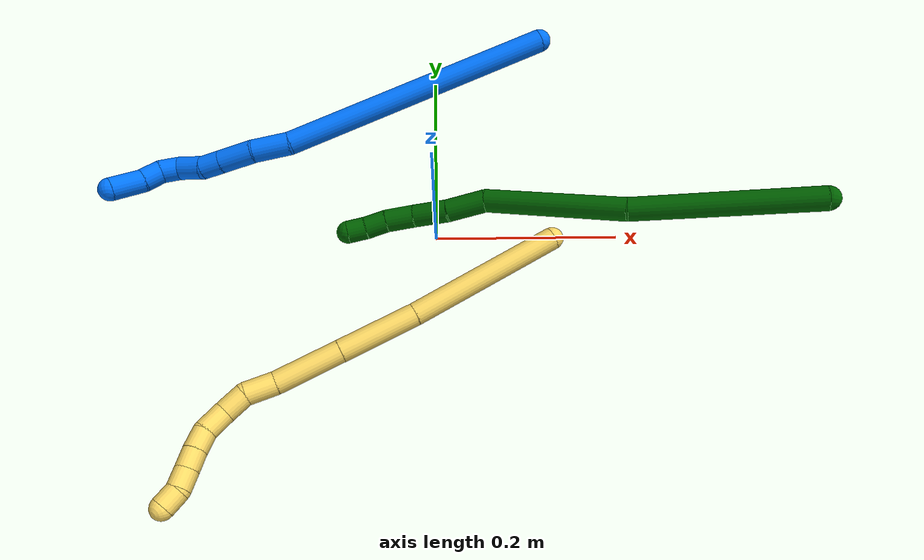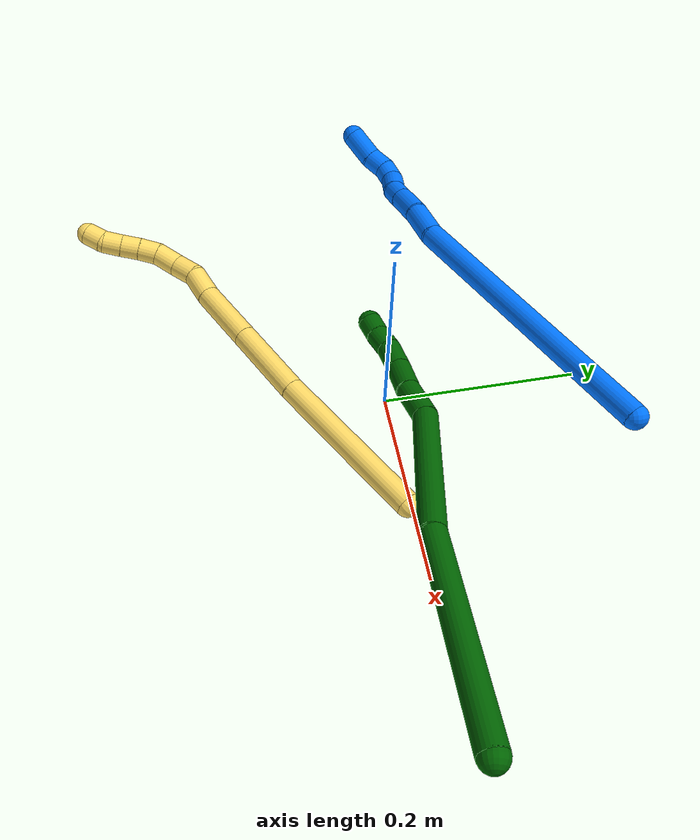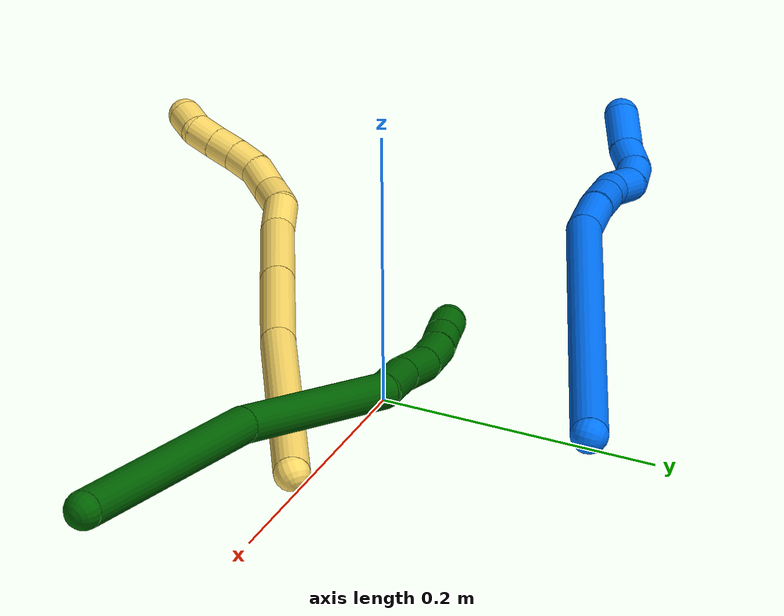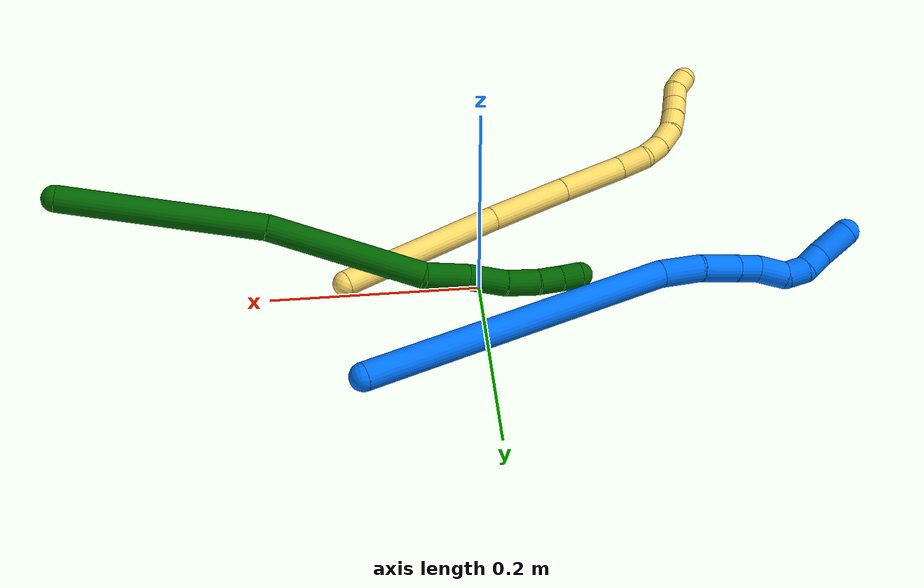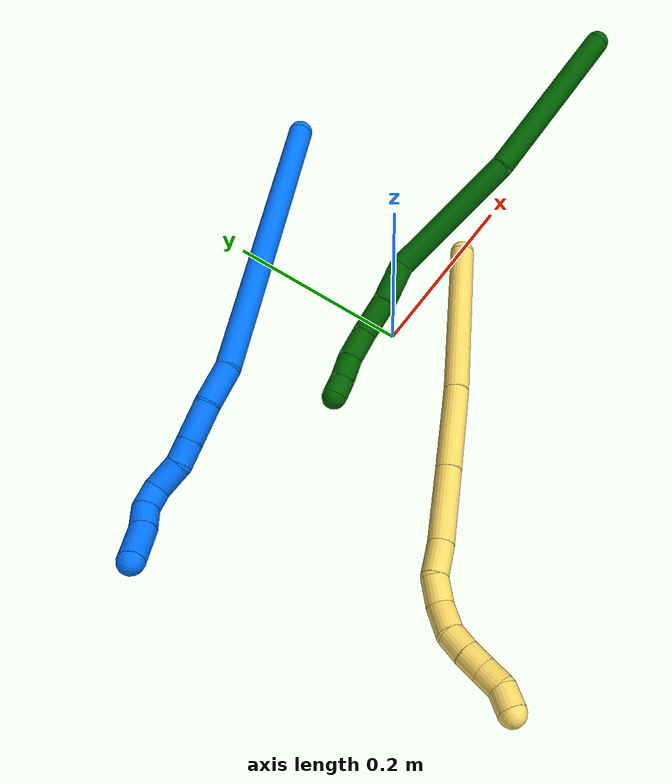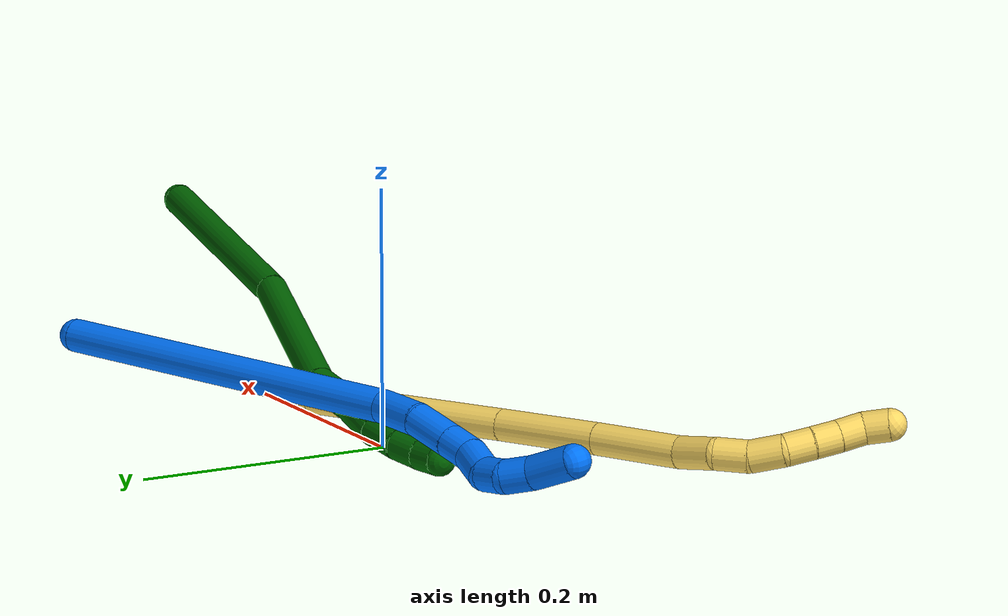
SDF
<sdf version="1.7">
 <world name="default">
  <model name="5">
   <static>0</static>
   <link name="5">
    <collision name="collision-cylinder-e_1_1_4">
     <pose>-0.052733 -0.023867 0.064256 0.355647 -0.655752 -0.122114</pose>
     <geometry><cylinder><radius>0.0125</radius><length>0.172966</length></cylinder></geometry>
     <surface>
      <friction><ode><mu>1.16</mu><mu2>1.16</mu2><slip1>0</slip1><slip2>0</slip2></ode></friction>
      <contact><ode><kp>1e+06</kp><kd>1</kd><max_vel>0</max_vel><min_depth>0.001</min_depth></ode></contact>
     </surface>
    </collision>
    <visual name="visual-cylinder-e_1_1_4">
     <pose>-0.052733 -0.023867 0.064256 0.355647 -0.655752 -0.122114</pose>
     <geometry><cylinder><radius>0.0125</radius><length>0.172966</length></cylinder></geometry>
     <material><ambient>1 0.858824 0.4 1</ambient></material>
    </visual>
    <collision name="collision-cylinder-e_2_4_5">
     <pose>-0.133072 -0.057986 0.160319 0.311777 -0.690431 -0.112917</pose>
     <geometry><cylinder><radius>0.0125</radius><length>0.08669</length></cylinder></geometry>
     <surface>
      <friction><ode><mu>1.16</mu><mu2>1.16</mu2><slip1>0</slip1><slip2>0</slip2></ode></friction>
      <contact><ode><kp>1e+06</kp><kd>1</kd><max_vel>0</max_vel><min_depth>0.001</min_depth></ode></contact>
     </surface>
    </collision>
    <visual name="visual-cylinder-e_2_4_5">
     <pose>-0.133072 -0.057986 0.160319 0.311777 -0.690431 -0.112917</pose>
     <geometry><cylinder><radius>0.0125</radius><length>0.08669</length></cylinder></geometry>
     <material><ambient>1 0.858824 0.4 1</ambient></material>
    </visual>
    <collision name="collision-cylinder-e_3_5_6">
     <pose>-0.184257 -0.077068 0.218635 0.32157 -0.700935 -0.118438</pose>
     <geometry><cylinder><radius>0.0125</radius><length>0.073122</length></cylinder></geometry>
     <surface>
      <friction><ode><mu>1.16</mu><mu2>1.16</mu2><slip1>0</slip1><slip2>0</slip2></ode></friction>
      <contact><ode><kp>1e+06</kp><kd>1</kd><max_vel>0</max_vel><min_depth>0.001</min_depth></ode></contact>
     </surface>
    </collision>
    <visual name="visual-cylinder-e_3_5_6">
     <pose>-0.184257 -0.077068 0.218635 0.32157 -0.700935 -0.118438</pose>
     <geometry><cylinder><radius>0.0125</radius><length>0.073122</length></cylinder></geometry>
     <material><ambient>1 0.858824 0.4 1</ambient></material>
    </visual>
    <collision name="collision-cylinder-e_4_6_7">
     <pose>-0.218159 -0.087449 0.257556 0.124303 -0.689986 -0.04472</pose>
     <geometry><cylinder><radius>0.0125</radius><length>0.032437</length></cylinder></geometry>
     <surface>
      <friction><ode><mu>1.16</mu><mu2>1.16</mu2><slip1>0</slip1><slip2>0</slip2></ode></friction>
      <contact><ode><kp>1e+06</kp><kd>1</kd><max_vel>0</max_vel><min_depth>0.001</min_depth></ode></contact>
     </surface>
    </collision>
    <visual name="visual-cylinder-e_4_6_7">
     <pose>-0.218159 -0.087449 0.257556 0.124303 -0.689986 -0.04472</pose>
     <geometry><cylinder><radius>0.0125</radius><length>0.032437</length></cylinder></geometry>
     <material><ambient>1 0.858824 0.4 1</ambient></material>
    </visual>
    <collision name="collision-cylinder-e_5_7_8">
     <pose>-0.234186 -0.094743 0.280194 0.511659 -0.452576 -0.120294</pose>
     <geometry><cylinder><radius>0.0125</radius><length>0.026082</length></cylinder></geometry>
     <surface>
      <friction><ode><mu>1.16</mu><mu2>1.16</mu2><slip1>0</slip1><slip2>0</slip2></ode></friction>
      <contact><ode><kp>1e+06</kp><kd>1</kd><max_vel>0</max_vel><min_depth>0.001</min_depth></ode></contact>
     </surface>
    </collision>
    <visual name="visual-cylinder-e_5_7_8">
     <pose>-0.234186 -0.094743 0.280194 0.511659 -0.452576 -0.120294</pose>
     <geometry><cylinder><radius>0.0125</radius><length>0.026082</length></cylinder></geometry>
     <material><ambient>1 0.858824 0.4 1</ambient></material>
    </visual>
    <collision name="collision-cylinder-e_6_8_9">
     <pose>-0.24288 -0.104918 0.302603 0.348937 -0.226815 -0.040145</pose>
     <geometry><cylinder><radius>0.0125</radius><length>0.02661</length></cylinder></geometry>
     <surface>
      <friction><ode><mu>1.16</mu><mu2>1.16</mu2><slip1>0</slip1><slip2>0</slip2></ode></friction>
      <contact><ode><kp>1e+06</kp><kd>1</kd><max_vel>0</max_vel><min_depth>0.001</min_depth></ode></contact>
     </surface>
    </collision>
    <visual name="visual-cylinder-e_6_8_9">
     <pose>-0.24288 -0.104918 0.302603 0.348937 -0.226815 -0.040145</pose>
     <geometry><cylinder><radius>0.0125</radius><length>0.02661</length></cylinder></geometry>
     <material><ambient>1 0.858824 0.4 1</ambient></material>
    </visual>
    <collision name="collision-cylinder-e_7_9_10">
     <pose>-0.245087 -0.11466 0.323946 0.525345 0.074002 0.019906</pose>
     <geometry><cylinder><radius>0.0125</radius><length>0.021235</length></cylinder></geometry>
     <surface>
      <friction><ode><mu>1.16</mu><mu2>1.16</mu2><slip1>0</slip1><slip2>0</slip2></ode></friction>
      <contact><ode><kp>1e+06</kp><kd>1</kd><max_vel>0</max_vel><min_depth>0.001</min_depth></ode></contact>
     </surface>
    </collision>
    <visual name="visual-cylinder-e_7_9_10">
     <pose>-0.245087 -0.11466 0.323946 0.525345 0.074002 0.019906</pose>
     <geometry><cylinder><radius>0.0125</radius><length>0.021235</length></cylinder></geometry>
     <material><ambient>1 0.858824 0.4 1</ambient></material>
    </visual>
    <collision name="collision-cylinder-e_8_10_11">
     <pose>-0.242871 -0.12543 0.341581 0.572327 0.141062 0.041569</pose>
     <geometry><cylinder><radius>0.0125</radius><length>0.020362</length></cylinder></geometry>
     <surface>
      <friction><ode><mu>1.16</mu><mu2>1.16</mu2><slip1>0</slip1><slip2>0</slip2></ode></friction>
      <contact><ode><kp>1e+06</kp><kd>1</kd><max_vel>0</max_vel><min_depth>0.001</min_depth></ode></contact>
     </surface>
    </collision>
    <visual name="visual-cylinder-e_8_10_11">
     <pose>-0.242871 -0.12543 0.341581 0.572327 0.141062 0.041569</pose>
     <geometry><cylinder><radius>0.0125</radius><length>0.020362</length></cylinder></geometry>
     <material><ambient>1 0.858824 0.4 1</ambient></material>
    </visual>
    <collision name="collision-cylinder-e_9_11_12">
     <pose>-0.239789 -0.13599 0.358726 0.531764 0.162571 0.044363</pose>
     <geometry><cylinder><radius>0.0125</radius><length>0.020391</length></cylinder></geometry>
     <surface>
      <friction><ode><mu>1.16</mu><mu2>1.16</mu2><slip1>0</slip1><slip2>0</slip2></ode></friction>
      <contact><ode><kp>1e+06</kp><kd>1</kd><max_vel>0</max_vel><min_depth>0.001</min_depth></ode></contact>
     </surface>
    </collision>
    <visual name="visual-cylinder-e_9_11_12">
     <pose>-0.239789 -0.13599 0.358726 0.531764 0.162571 0.044363</pose>
     <geometry><cylinder><radius>0.0125</radius><length>0.020391</length></cylinder></geometry>
     <material><ambient>1 0.858824 0.4 1</ambient></material>
    </visual>
    <collision name="collision-cylinder-e_10_12_2">
     <pose>-0.240396 -0.14514 0.376318 0.426078 -0.22644 -0.049184</pose>
     <geometry><cylinder><radius>0.0125</radius><length>0.020105</length></cylinder></geometry>
     <surface>
      <friction><ode><mu>1.16</mu><mu2>1.16</mu2><slip1>0</slip1><slip2>0</slip2></ode></friction>
      <contact><ode><kp>1e+06</kp><kd>1</kd><max_vel>0</max_vel><min_depth>0.001</min_depth></ode></contact>
     </surface>
    </collision>
    <visual name="visual-cylinder-e_10_12_2">
     <pose>-0.240396 -0.14514 0.376318 0.426078 -0.22644 -0.049184</pose>
     <geometry><cylinder><radius>0.0125</radius><length>0.020105</length></cylinder></geometry>
     <material><ambient>1 0.858824 0.4 1</ambient></material>
    </visual>
    <collision name="collision-sphere-2">
     <pose>-0.242653 -0.149189 0.385238 0 -0 0</pose>
     <geometry><sphere><radius>0.0125</radius></sphere></geometry>
     <surface>
      <friction><ode><mu>1.16</mu><mu2>1.16</mu2><slip1>0</slip1><slip2>0</slip2></ode></friction>
      <contact><ode><kp>1e+06</kp><kd>1</kd><max_vel>0</max_vel><min_depth>0.001</min_depth></ode></contact>
     </surface>
    </collision>
    <visual name="visual-sphere-2">
     <pose>-0.242653 -0.149189 0.385238 0 -0 0</pose>
     <geometry><sphere><radius>0.0125</radius></sphere></geometry>
     <material><ambient>1 0.858824 0.4 1</ambient></material>
    </visual>
    <collision name="collision-sphere-12">
     <pose>-0.238139 -0.141092 0.367397 0 -0 0</pose>
     <geometry><sphere><radius>0.0125</radius></sphere></geometry>
     <surface>
      <friction><ode><mu>1.16</mu><mu2>1.16</mu2><slip1>0</slip1><slip2>0</slip2></ode></friction>
      <contact><ode><kp>1e+06</kp><kd>1</kd><max_vel>0</max_vel><min_depth>0.001</min_depth></ode></contact>
     </surface>
    </collision>
    <visual name="visual-sphere-12">
     <pose>-0.238139 -0.141092 0.367397 0 -0 0</pose>
     <geometry><sphere><radius>0.0125</radius></sphere></geometry>
     <material><ambient>1 0.858824 0.4 1</ambient></material>
    </visual>
    <collision name="collision-sphere-11">
     <pose>-0.241439 -0.130889 0.350054 0 -0 0</pose>
     <geometry><sphere><radius>0.0125</radius></sphere></geometry>
     <surface>
      <friction><ode><mu>1.16</mu><mu2>1.16</mu2><slip1>0</slip1><slip2>0</slip2></ode></friction>
      <contact><ode><kp>1e+06</kp><kd>1</kd><max_vel>0</max_vel><min_depth>0.001</min_depth></ode></contact>
     </surface>
    </collision>
    <visual name="visual-sphere-11">
     <pose>-0.241439 -0.130889 0.350054 0 -0 0</pose>
     <geometry><sphere><radius>0.0125</radius></sphere></geometry>
     <material><ambient>1 0.858824 0.4 1</ambient></material>
    </visual>
    <collision name="collision-sphere-10">
     <pose>-0.244302 -0.119971 0.333107 0 -0 0</pose>
     <geometry><sphere><radius>0.0125</radius></sphere></geometry>
     <surface>
      <friction><ode><mu>1.16</mu><mu2>1.16</mu2><slip1>0</slip1><slip2>0</slip2></ode></friction>
      <contact><ode><kp>1e+06</kp><kd>1</kd><max_vel>0</max_vel><min_depth>0.001</min_depth></ode></contact>
     </surface>
    </collision>
    <visual name="visual-sphere-10">
     <pose>-0.244302 -0.119971 0.333107 0 -0 0</pose>
     <geometry><sphere><radius>0.0125</radius></sphere></geometry>
     <material><ambient>1 0.858824 0.4 1</ambient></material>
    </visual>
    <collision name="collision-sphere-9">
     <pose>-0.245872 -0.10935 0.314786 0 -0 0</pose>
     <geometry><sphere><radius>0.0125</radius></sphere></geometry>
     <surface>
      <friction><ode><mu>1.16</mu><mu2>1.16</mu2><slip1>0</slip1><slip2>0</slip2></ode></friction>
      <contact><ode><kp>1e+06</kp><kd>1</kd><max_vel>0</max_vel><min_depth>0.001</min_depth></ode></contact>
     </surface>
    </collision>
    <visual name="visual-sphere-9">
     <pose>-0.245872 -0.10935 0.314786 0 -0 0</pose>
     <geometry><sphere><radius>0.0125</radius></sphere></geometry>
     <material><ambient>1 0.858824 0.4 1</ambient></material>
    </visual>
    <collision name="collision-sphere-4">
     <pose>-0.105467 -0.047735 0.128512 0 -0 0</pose>
     <geometry><sphere><radius>0.0125</radius></sphere></geometry>
     <surface>
      <friction><ode><mu>1.16</mu><mu2>1.16</mu2><slip1>0</slip1><slip2>0</slip2></ode></friction>
      <contact><ode><kp>1e+06</kp><kd>1</kd><max_vel>0</max_vel><min_depth>0.001</min_depth></ode></contact>
     </surface>
    </collision>
    <visual name="visual-sphere-4">
     <pose>-0.105467 -0.047735 0.128512 0 -0 0</pose>
     <geometry><sphere><radius>0.0125</radius></sphere></geometry>
     <material><ambient>1 0.858824 0.4 1</ambient></material>
    </visual>
    <collision name="collision-sphere-1">
     <geometry><sphere><radius>0.0125</radius></sphere></geometry>
     <surface>
      <friction><ode><mu>1.16</mu><mu2>1.16</mu2><slip1>0</slip1><slip2>0</slip2></ode></friction>
      <contact><ode><kp>1e+06</kp><kd>1</kd><max_vel>0</max_vel><min_depth>0.001</min_depth></ode></contact>
     </surface>
    </collision>
    <visual name="visual-sphere-1">
     <geometry><sphere><radius>0.0125</radius></sphere></geometry>
     <material><ambient>1 0.858824 0.4 1</ambient></material>
    </visual>
    <collision name="collision-sphere-8">
     <pose>-0.239888 -0.100485 0.29042 0 -0 0</pose>
     <geometry><sphere><radius>0.0125</radius></sphere></geometry>
     <surface>
      <friction><ode><mu>1.16</mu><mu2>1.16</mu2><slip1>0</slip1><slip2>0</slip2></ode></friction>
      <contact><ode><kp>1e+06</kp><kd>1</kd><max_vel>0</max_vel><min_depth>0.001</min_depth></ode></contact>
     </surface>
    </collision>
    <visual name="visual-sphere-8">
     <pose>-0.239888 -0.100485 0.29042 0 -0 0</pose>
     <geometry><sphere><radius>0.0125</radius></sphere></geometry>
     <material><ambient>1 0.858824 0.4 1</ambient></material>
    </visual>
    <collision name="collision-sphere-5">
     <pose>-0.160677 -0.068236 0.192126 0 -0 0</pose>
     <geometry><sphere><radius>0.0125</radius></sphere></geometry>
     <surface>
      <friction><ode><mu>1.16</mu><mu2>1.16</mu2><slip1>0</slip1><slip2>0</slip2></ode></friction>
      <contact><ode><kp>1e+06</kp><kd>1</kd><max_vel>0</max_vel><min_depth>0.001</min_depth></ode></contact>
     </surface>
    </collision>
    <visual name="visual-sphere-5">
     <pose>-0.160677 -0.068236 0.192126 0 -0 0</pose>
     <geometry><sphere><radius>0.0125</radius></sphere></geometry>
     <material><ambient>1 0.858824 0.4 1</ambient></material>
    </visual>
    <collision name="collision-sphere-6">
     <pose>-0.207836 -0.085899 0.245144 0 -0 0</pose>
     <geometry><sphere><radius>0.0125</radius></sphere></geometry>
     <surface>
      <friction><ode><mu>1.16</mu><mu2>1.16</mu2><slip1>0</slip1><slip2>0</slip2></ode></friction>
      <contact><ode><kp>1e+06</kp><kd>1</kd><max_vel>0</max_vel><min_depth>0.001</min_depth></ode></contact>
     </surface>
    </collision>
    <visual name="visual-sphere-6">
     <pose>-0.207836 -0.085899 0.245144 0 -0 0</pose>
     <geometry><sphere><radius>0.0125</radius></sphere></geometry>
     <material><ambient>1 0.858824 0.4 1</ambient></material>
    </visual>
    <collision name="collision-sphere-7">
     <pose>-0.228483 -0.089 0.269968 0 -0 0</pose>
     <geometry><sphere><radius>0.0125</radius></sphere></geometry>
     <surface>
      <friction><ode><mu>1.16</mu><mu2>1.16</mu2><slip1>0</slip1><slip2>0</slip2></ode></friction>
      <contact><ode><kp>1e+06</kp><kd>1</kd><max_vel>0</max_vel><min_depth>0.001</min_depth></ode></contact>
     </surface>
    </collision>
    <visual name="visual-sphere-7">
     <pose>-0.228483 -0.089 0.269968 0 -0 0</pose>
     <geometry><sphere><radius>0.0125</radius></sphere></geometry>
     <material><ambient>1 0.858824 0.4 1</ambient></material>
    </visual>
    <inertial>
     <pose>-0.147301 -0.067139 0.186857 0 -0 0</pose>
     <mass>0.5</mass>
     <inertia><ixx>0.00036</ixx><ixy>0</ixy><ixz>0</ixz><iyy>0.00046</iyy><iyz>0</iyz><izz>0.000509</izz></inertia>
    </inertial>
   </link>
   <pose>0.127503 -0.005555 0.011498 0.848109 -0.43514 -0.312138</pose>
  </model>
  <model name="6">
   <static>0</static>
   <link name="6">
    <collision name="collision-cylinder-e_1_1_4">
     <pose>-0.026191 0.001589 -0.091833 -3.12429 -0.277787 3.01798</pose>
     <geometry><cylinder><radius>0.0125</radius><length>0.191017</length></cylinder></geometry>
     <surface>
      <friction><ode><mu>1.16</mu><mu2>1.16</mu2><slip1>0</slip1><slip2>0</slip2></ode></friction>
      <contact><ode><kp>1e+06</kp><kd>1</kd><max_vel>0</max_vel><min_depth>0.001</min_depth></ode></contact>
     </surface>
    </collision>
    <visual name="visual-cylinder-e_1_1_4">
     <pose>-0.026191 0.001589 -0.091833 -3.12429 -0.277787 3.01798</pose>
     <geometry><cylinder><radius>0.0125</radius><length>0.191017</length></cylinder></geometry>
     <material><ambient>0 0.392157 0.003922 1</ambient></material>
    </visual>
    <collision name="collision-cylinder-e_2_4_5">
     <pose>-0.072129 -0.009249 -0.255875 2.97117 -0.263252 -1.99559</pose>
     <geometry><cylinder><radius>0.0125</radius><length>0.151769</length></cylinder></geometry>
     <surface>
      <friction><ode><mu>1.16</mu><mu2>1.16</mu2><slip1>0</slip1><slip2>0</slip2></ode></friction>
      <contact><ode><kp>1e+06</kp><kd>1</kd><max_vel>0</max_vel><min_depth>0.001</min_depth></ode></contact>
     </surface>
    </collision>
    <visual name="visual-cylinder-e_2_4_5">
     <pose>-0.072129 -0.009249 -0.255875 2.97117 -0.263252 -1.99559</pose>
     <geometry><cylinder><radius>0.0125</radius><length>0.151769</length></cylinder></geometry>
     <material><ambient>0 0.392157 0.003922 1</ambient></material>
    </visual>
    <collision name="collision-cylinder-e_3_5_6">
     <pose>-0.100396 -0.018111 -0.347402 -2.95912 -0.409233 2.31114</pose>
     <geometry><cylinder><radius>0.0125</radius><length>0.042824</length></cylinder></geometry>
     <surface>
      <friction><ode><mu>1.16</mu><mu2>1.16</mu2><slip1>0</slip1><slip2>0</slip2></ode></friction>
      <contact><ode><kp>1e+06</kp><kd>1</kd><max_vel>0</max_vel><min_depth>0.001</min_depth></ode></contact>
     </surface>
    </collision>
    <visual name="visual-cylinder-e_3_5_6">
     <pose>-0.100396 -0.018111 -0.347402 -2.95912 -0.409233 2.31114</pose>
     <geometry><cylinder><radius>0.0125</radius><length>0.042824</length></cylinder></geometry>
     <material><ambient>0 0.392157 0.003922 1</ambient></material>
    </visual>
    <collision name="collision-cylinder-e_4_6_7">
     <pose>-0.116066 -0.013876 -0.38457 -3.10403 -0.38074 2.94727</pose>
     <geometry><cylinder><radius>0.0125</radius><length>0.038482</length></cylinder></geometry>
     <surface>
      <friction><ode><mu>1.16</mu><mu2>1.16</mu2><slip1>0</slip1><slip2>0</slip2></ode></friction>
      <contact><ode><kp>1e+06</kp><kd>1</kd><max_vel>0</max_vel><min_depth>0.001</min_depth></ode></contact>
     </surface>
    </collision>
    <visual name="visual-cylinder-e_4_6_7">
     <pose>-0.116066 -0.013876 -0.38457 -3.10403 -0.38074 2.94727</pose>
     <geometry><cylinder><radius>0.0125</radius><length>0.038482</length></cylinder></geometry>
     <material><ambient>0 0.392157 0.003922 1</ambient></material>
    </visual>
    <collision name="collision-cylinder-e_5_7_8">
     <pose>-0.127684 -0.010178 -0.417155 -2.93896 -0.288735 1.92106</pose>
     <geometry><cylinder><radius>0.0125</radius><length>0.031383</length></cylinder></geometry>
     <surface>
      <friction><ode><mu>1.16</mu><mu2>1.16</mu2><slip1>0</slip1><slip2>0</slip2></ode></friction>
      <contact><ode><kp>1e+06</kp><kd>1</kd><max_vel>0</max_vel><min_depth>0.001</min_depth></ode></contact>
     </surface>
    </collision>
    <visual name="visual-cylinder-e_5_7_8">
     <pose>-0.127684 -0.010178 -0.417155 -2.93896 -0.288735 1.92106</pose>
     <geometry><cylinder><radius>0.0125</radius><length>0.031383</length></cylinder></geometry>
     <material><ambient>0 0.392157 0.003922 1</ambient></material>
    </visual>
    <collision name="collision-cylinder-e_6_8_9">
     <pose>-0.136383 -0.003149 -0.442412 -2.7782 -0.359459 1.55968</pose>
     <geometry><cylinder><radius>0.0125</radius><length>0.024052</length></cylinder></geometry>
     <surface>
      <friction><ode><mu>1.16</mu><mu2>1.16</mu2><slip1>0</slip1><slip2>0</slip2></ode></friction>
      <contact><ode><kp>1e+06</kp><kd>1</kd><max_vel>0</max_vel><min_depth>0.001</min_depth></ode></contact>
     </surface>
    </collision>
    <visual name="visual-cylinder-e_6_8_9">
     <pose>-0.136383 -0.003149 -0.442412 -2.7782 -0.359459 1.55968</pose>
     <geometry><cylinder><radius>0.0125</radius><length>0.024052</length></cylinder></geometry>
     <material><ambient>0 0.392157 0.003922 1</ambient></material>
    </visual>
    <collision name="collision-cylinder-e_7_9_2">
     <pose>-0.143018 0.004227 -0.462294 -2.79552 -0.237163 1.19659</pose>
     <geometry><cylinder><radius>0.0125</radius><length>0.020473</length></cylinder></geometry>
     <surface>
      <friction><ode><mu>1.16</mu><mu2>1.16</mu2><slip1>0</slip1><slip2>0</slip2></ode></friction>
      <contact><ode><kp>1e+06</kp><kd>1</kd><max_vel>0</max_vel><min_depth>0.001</min_depth></ode></contact>
     </surface>
    </collision>
    <visual name="visual-cylinder-e_7_9_2">
     <pose>-0.143018 0.004227 -0.462294 -2.79552 -0.237163 1.19659</pose>
     <geometry><cylinder><radius>0.0125</radius><length>0.020473</length></cylinder></geometry>
     <material><ambient>0 0.392157 0.003922 1</ambient></material>
    </visual>
    <collision name="collision-sphere-2">
     <pose>-0.145423 0.007602 -0.471654 0 -0 0</pose>
     <geometry><sphere><radius>0.0125</radius></sphere></geometry>
     <surface>
      <friction><ode><mu>1.16</mu><mu2>1.16</mu2><slip1>0</slip1><slip2>0</slip2></ode></friction>
      <contact><ode><kp>1e+06</kp><kd>1</kd><max_vel>0</max_vel><min_depth>0.001</min_depth></ode></contact>
     </surface>
    </collision>
    <visual name="visual-sphere-2">
     <pose>-0.145423 0.007602 -0.471654 0 -0 0</pose>
     <geometry><sphere><radius>0.0125</radius></sphere></geometry>
     <material><ambient>0 0.392157 0.003922 1</ambient></material>
    </visual>
    <collision name="collision-sphere-9">
     <pose>-0.140613 0.000852 -0.452934 0 -0 0</pose>
     <geometry><sphere><radius>0.0125</radius></sphere></geometry>
     <surface>
      <friction><ode><mu>1.16</mu><mu2>1.16</mu2><slip1>0</slip1><slip2>0</slip2></ode></friction>
      <contact><ode><kp>1e+06</kp><kd>1</kd><max_vel>0</max_vel><min_depth>0.001</min_depth></ode></contact>
     </surface>
    </collision>
    <visual name="visual-sphere-9">
     <pose>-0.140613 0.000852 -0.452934 0 -0 0</pose>
     <geometry><sphere><radius>0.0125</radius></sphere></geometry>
     <material><ambient>0 0.392157 0.003922 1</ambient></material>
    </visual>
    <collision name="collision-sphere-4">
     <pose>-0.052382 0.003178 -0.183667 0 -0 0</pose>
     <geometry><sphere><radius>0.0125</radius></sphere></geometry>
     <surface>
      <friction><ode><mu>1.16</mu><mu2>1.16</mu2><slip1>0</slip1><slip2>0</slip2></ode></friction>
      <contact><ode><kp>1e+06</kp><kd>1</kd><max_vel>0</max_vel><min_depth>0.001</min_depth></ode></contact>
     </surface>
    </collision>
    <visual name="visual-sphere-4">
     <pose>-0.052382 0.003178 -0.183667 0 -0 0</pose>
     <geometry><sphere><radius>0.0125</radius></sphere></geometry>
     <material><ambient>0 0.392157 0.003922 1</ambient></material>
    </visual>
    <collision name="collision-sphere-1">
     <geometry><sphere><radius>0.0125</radius></sphere></geometry>
     <surface>
      <friction><ode><mu>1.16</mu><mu2>1.16</mu2><slip1>0</slip1><slip2>0</slip2></ode></friction>
      <contact><ode><kp>1e+06</kp><kd>1</kd><max_vel>0</max_vel><min_depth>0.001</min_depth></ode></contact>
     </surface>
    </collision>
    <visual name="visual-sphere-1">
     <geometry><sphere><radius>0.0125</radius></sphere></geometry>
     <material><ambient>0 0.392157 0.003922 1</ambient></material>
    </visual>
    <collision name="collision-sphere-8">
     <pose>-0.132152 -0.00715 -0.431889 0 -0 0</pose>
     <geometry><sphere><radius>0.0125</radius></sphere></geometry>
     <surface>
      <friction><ode><mu>1.16</mu><mu2>1.16</mu2><slip1>0</slip1><slip2>0</slip2></ode></friction>
      <contact><ode><kp>1e+06</kp><kd>1</kd><max_vel>0</max_vel><min_depth>0.001</min_depth></ode></contact>
     </surface>
    </collision>
    <visual name="visual-sphere-8">
     <pose>-0.132152 -0.00715 -0.431889 0 -0 0</pose>
     <geometry><sphere><radius>0.0125</radius></sphere></geometry>
     <material><ambient>0 0.392157 0.003922 1</ambient></material>
    </visual>
    <collision name="collision-sphere-5">
     <pose>-0.091876 -0.021676 -0.328084 0 -0 0</pose>
     <geometry><sphere><radius>0.0125</radius></sphere></geometry>
     <surface>
      <friction><ode><mu>1.16</mu><mu2>1.16</mu2><slip1>0</slip1><slip2>0</slip2></ode></friction>
      <contact><ode><kp>1e+06</kp><kd>1</kd><max_vel>0</max_vel><min_depth>0.001</min_depth></ode></contact>
     </surface>
    </collision>
    <visual name="visual-sphere-5">
     <pose>-0.091876 -0.021676 -0.328084 0 -0 0</pose>
     <geometry><sphere><radius>0.0125</radius></sphere></geometry>
     <material><ambient>0 0.392157 0.003922 1</ambient></material>
    </visual>
    <collision name="collision-sphere-6">
     <pose>-0.108916 -0.014546 -0.36672 0 -0 0</pose>
     <geometry><sphere><radius>0.0125</radius></sphere></geometry>
     <surface>
      <friction><ode><mu>1.16</mu><mu2>1.16</mu2><slip1>0</slip1><slip2>0</slip2></ode></friction>
      <contact><ode><kp>1e+06</kp><kd>1</kd><max_vel>0</max_vel><min_depth>0.001</min_depth></ode></contact>
     </surface>
    </collision>
    <visual name="visual-sphere-6">
     <pose>-0.108916 -0.014546 -0.36672 0 -0 0</pose>
     <geometry><sphere><radius>0.0125</radius></sphere></geometry>
     <material><ambient>0 0.392157 0.003922 1</ambient></material>
    </visual>
    <collision name="collision-sphere-7">
     <pose>-0.123216 -0.013205 -0.402421 0 -0 0</pose>
     <geometry><sphere><radius>0.0125</radius></sphere></geometry>
     <surface>
      <friction><ode><mu>1.16</mu><mu2>1.16</mu2><slip1>0</slip1><slip2>0</slip2></ode></friction>
      <contact><ode><kp>1e+06</kp><kd>1</kd><max_vel>0</max_vel><min_depth>0.001</min_depth></ode></contact>
     </surface>
    </collision>
    <visual name="visual-sphere-7">
     <pose>-0.123216 -0.013205 -0.402421 0 -0 0</pose>
     <geometry><sphere><radius>0.0125</radius></sphere></geometry>
     <material><ambient>0 0.392157 0.003922 1</ambient></material>
    </visual>
    <inertial>
     <pose>-0.069862 -0.005437 -0.238498 0 -0 0</pose>
     <mass>0.5</mass>
     <inertia>
      <ixx>-0.000881</ixx>
      <ixy>0</ixy>
      <ixz>0</ixz>
      <iyy>0.000552</iyy>
      <iyz>0</iyz>
      <izz>0.000245</izz>
     </inertia>
    </inertial>
   </link>
   <pose>0.383133 -0.013548 0.125535 1.62915 -1.09386 1.32932</pose>
  </model>
  <model name="14">
   <static>0</static>
   <link name="14">
    <collision name="collision-cylinder-e_1_1_4">
     <pose>-0.134957 -0.040164 -0.045441 2.41776 -1.14846 -2.08266</pose>
     <geometry><cylinder><radius>0.0125</radius><length>0.295916</length></cylinder></geometry>
     <surface>
      <friction><ode><mu>1.16</mu><mu2>1.16</mu2><slip1>0</slip1><slip2>0</slip2></ode></friction>
      <contact><ode><kp>1e+06</kp><kd>1</kd><max_vel>0</max_vel><min_depth>0.001</min_depth></ode></contact>
     </surface>
    </collision>
    <visual name="visual-cylinder-e_1_1_4">
     <pose>-0.134957 -0.040164 -0.045441 2.41776 -1.14846 -2.08266</pose>
     <geometry><cylinder><radius>0.0125</radius><length>0.295916</length></cylinder></geometry>
     <material><ambient>0 0.462745 1 1</ambient></material>
    </visual>
    <collision name="collision-cylinder-e_2_4_5">
     <pose>-0.288701 -0.086156 -0.092695 1.87252 -1.25666 -1.55778</pose>
     <geometry><cylinder><radius>0.0125</radius><length>0.039506</length></cylinder></geometry>
     <surface>
      <friction><ode><mu>1.16</mu><mu2>1.16</mu2><slip1>0</slip1><slip2>0</slip2></ode></friction>
      <contact><ode><kp>1e+06</kp><kd>1</kd><max_vel>0</max_vel><min_depth>0.001</min_depth></ode></contact>
     </surface>
    </collision>
    <visual name="visual-cylinder-e_2_4_5">
     <pose>-0.288701 -0.086156 -0.092695 1.87252 -1.25666 -1.55778</pose>
     <geometry><cylinder><radius>0.0125</radius><length>0.039506</length></cylinder></geometry>
     <material><ambient>0 0.462745 1 1</ambient></material>
    </visual>
    <collision name="collision-cylinder-e_3_5_6">
     <pose>-0.325848 -0.094139 -0.095833 2.12184 -1.43391 -2.00083</pose>
     <geometry><cylinder><radius>0.0125</radius><length>0.037068</length></cylinder></geometry>
     <surface>
      <friction><ode><mu>1.16</mu><mu2>1.16</mu2><slip1>0</slip1><slip2>0</slip2></ode></friction>
      <contact><ode><kp>1e+06</kp><kd>1</kd><max_vel>0</max_vel><min_depth>0.001</min_depth></ode></contact>
     </surface>
    </collision>
    <visual name="visual-cylinder-e_3_5_6">
     <pose>-0.325848 -0.094139 -0.095833 2.12184 -1.43391 -2.00083</pose>
     <geometry><cylinder><radius>0.0125</radius><length>0.037068</length></cylinder></geometry>
     <material><ambient>0 0.462745 1 1</ambient></material>
    </visual>
    <collision name="collision-cylinder-e_4_6_7">
     <pose>-0.35531 -0.097608 -0.097919 2.0956 -1.4348 -1.97371</pose>
     <geometry><cylinder><radius>0.0125</radius><length>0.022409</length></cylinder></geometry>
     <surface>
      <friction><ode><mu>1.16</mu><mu2>1.16</mu2><slip1>0</slip1><slip2>0</slip2></ode></friction>
      <contact><ode><kp>1e+06</kp><kd>1</kd><max_vel>0</max_vel><min_depth>0.001</min_depth></ode></contact>
     </surface>
    </collision>
    <visual name="visual-cylinder-e_4_6_7">
     <pose>-0.35531 -0.097608 -0.097919 2.0956 -1.4348 -1.97371</pose>
     <geometry><cylinder><radius>0.0125</radius><length>0.022409</length></cylinder></geometry>
     <material><ambient>0 0.462745 1 1</ambient></material>
    </visual>
    <collision name="collision-cylinder-e_5_7_8">
     <pose>-0.380062 -0.100786 -0.095131 0.483436 -1.28519 -0.365001</pose>
     <geometry><cylinder><radius>0.0125</radius><length>0.028454</length></cylinder></geometry>
     <surface>
      <friction><ode><mu>1.16</mu><mu2>1.16</mu2><slip1>0</slip1><slip2>0</slip2></ode></friction>
      <contact><ode><kp>1e+06</kp><kd>1</kd><max_vel>0</max_vel><min_depth>0.001</min_depth></ode></contact>
     </surface>
    </collision>
    <visual name="visual-cylinder-e_5_7_8">
     <pose>-0.380062 -0.100786 -0.095131 0.483436 -1.28519 -0.365001</pose>
     <geometry><cylinder><radius>0.0125</radius><length>0.028454</length></cylinder></geometry>
     <material><ambient>0 0.462745 1 1</ambient></material>
    </visual>
    <collision name="collision-cylinder-e_6_8_9">
     <pose>-0.402773 -0.106955 -0.093193 1.92883 -1.10127 -1.44925</pose>
     <geometry><cylinder><radius>0.0125</radius><length>0.020319</length></cylinder></geometry>
     <surface>
      <friction><ode><mu>1.16</mu><mu2>1.16</mu2><slip1>0</slip1><slip2>0</slip2></ode></friction>
      <contact><ode><kp>1e+06</kp><kd>1</kd><max_vel>0</max_vel><min_depth>0.001</min_depth></ode></contact>
     </surface>
    </collision>
    <visual name="visual-cylinder-e_6_8_9">
     <pose>-0.402773 -0.106955 -0.093193 1.92883 -1.10127 -1.44925</pose>
     <geometry><cylinder><radius>0.0125</radius><length>0.020319</length></cylinder></geometry>
     <material><ambient>0 0.462745 1 1</ambient></material>
    </visual>
    <collision name="collision-cylinder-e_7_9_10">
     <pose>-0.419406 -0.116038 -0.100962 2.48172 -0.770971 -1.73968</pose>
     <geometry><cylinder><radius>0.0125</radius><length>0.021735</length></cylinder></geometry>
     <surface>
      <friction><ode><mu>1.16</mu><mu2>1.16</mu2><slip1>0</slip1><slip2>0</slip2></ode></friction>
      <contact><ode><kp>1e+06</kp><kd>1</kd><max_vel>0</max_vel><min_depth>0.001</min_depth></ode></contact>
     </surface>
    </collision>
    <visual name="visual-cylinder-e_7_9_10">
     <pose>-0.419406 -0.116038 -0.100962 2.48172 -0.770971 -1.73968</pose>
     <geometry><cylinder><radius>0.0125</radius><length>0.021735</length></cylinder></geometry>
     <material><ambient>0 0.462745 1 1</ambient></material>
    </visual>
    <collision name="collision-cylinder-e_8_10_2">
     <pose>-0.438731 -0.131143 -0.114497 2.19112 -0.747019 -1.30179</pose>
     <geometry><cylinder><radius>0.0125</radius><length>0.034592</length></cylinder></geometry>
     <surface>
      <friction><ode><mu>1.16</mu><mu2>1.16</mu2><slip1>0</slip1><slip2>0</slip2></ode></friction>
      <contact><ode><kp>1e+06</kp><kd>1</kd><max_vel>0</max_vel><min_depth>0.001</min_depth></ode></contact>
     </surface>
    </collision>
    <visual name="visual-cylinder-e_8_10_2">
     <pose>-0.438731 -0.131143 -0.114497 2.19112 -0.747019 -1.30179</pose>
     <geometry><cylinder><radius>0.0125</radius><length>0.034592</length></cylinder></geometry>
     <material><ambient>0 0.462745 1 1</ambient></material>
    </visual>
    <collision name="collision-sphere-2">
     <pose>-0.450483 -0.141469 -0.121874 0 -0 0</pose>
     <geometry><sphere><radius>0.0125</radius></sphere></geometry>
     <surface>
      <friction><ode><mu>1.16</mu><mu2>1.16</mu2><slip1>0</slip1><slip2>0</slip2></ode></friction>
      <contact><ode><kp>1e+06</kp><kd>1</kd><max_vel>0</max_vel><min_depth>0.001</min_depth></ode></contact>
     </surface>
    </collision>
    <visual name="visual-sphere-2">
     <pose>-0.450483 -0.141469 -0.121874 0 -0 0</pose>
     <geometry><sphere><radius>0.0125</radius></sphere></geometry>
     <material><ambient>0 0.462745 1 1</ambient></material>
    </visual>
    <collision name="collision-sphere-10">
     <pose>-0.426979 -0.120817 -0.10712 0 -0 0</pose>
     <geometry><sphere><radius>0.0125</radius></sphere></geometry>
     <surface>
      <friction><ode><mu>1.16</mu><mu2>1.16</mu2><slip1>0</slip1><slip2>0</slip2></ode></friction>
      <contact><ode><kp>1e+06</kp><kd>1</kd><max_vel>0</max_vel><min_depth>0.001</min_depth></ode></contact>
     </surface>
    </collision>
    <visual name="visual-sphere-10">
     <pose>-0.426979 -0.120817 -0.10712 0 -0 0</pose>
     <geometry><sphere><radius>0.0125</radius></sphere></geometry>
     <material><ambient>0 0.462745 1 1</ambient></material>
    </visual>
    <collision name="collision-sphere-9">
     <pose>-0.411833 -0.11126 -0.094804 0 -0 0</pose>
     <geometry><sphere><radius>0.0125</radius></sphere></geometry>
     <surface>
      <friction><ode><mu>1.16</mu><mu2>1.16</mu2><slip1>0</slip1><slip2>0</slip2></ode></friction>
      <contact><ode><kp>1e+06</kp><kd>1</kd><max_vel>0</max_vel><min_depth>0.001</min_depth></ode></contact>
     </surface>
    </collision>
    <visual name="visual-sphere-9">
     <pose>-0.411833 -0.11126 -0.094804 0 -0 0</pose>
     <geometry><sphere><radius>0.0125</radius></sphere></geometry>
     <material><ambient>0 0.462745 1 1</ambient></material>
    </visual>
    <collision name="collision-sphere-4">
     <pose>-0.269915 -0.080329 -0.090882 0 -0 0</pose>
     <geometry><sphere><radius>0.0125</radius></sphere></geometry>
     <surface>
      <friction><ode><mu>1.16</mu><mu2>1.16</mu2><slip1>0</slip1><slip2>0</slip2></ode></friction>
      <contact><ode><kp>1e+06</kp><kd>1</kd><max_vel>0</max_vel><min_depth>0.001</min_depth></ode></contact>
     </surface>
    </collision>
    <visual name="visual-sphere-4">
     <pose>-0.269915 -0.080329 -0.090882 0 -0 0</pose>
     <geometry><sphere><radius>0.0125</radius></sphere></geometry>
     <material><ambient>0 0.462745 1 1</ambient></material>
    </visual>
    <collision name="collision-sphere-1">
     <geometry><sphere><radius>0.0125</radius></sphere></geometry>
     <surface>
      <friction><ode><mu>1.16</mu><mu2>1.16</mu2><slip1>0</slip1><slip2>0</slip2></ode></friction>
      <contact><ode><kp>1e+06</kp><kd>1</kd><max_vel>0</max_vel><min_depth>0.001</min_depth></ode></contact>
     </surface>
    </collision>
    <visual name="visual-sphere-1">
     <geometry><sphere><radius>0.0125</radius></sphere></geometry>
     <material><ambient>0 0.462745 1 1</ambient></material>
    </visual>
    <collision name="collision-sphere-8">
     <pose>-0.393713 -0.10265 -0.091582 0 -0 0</pose>
     <geometry><sphere><radius>0.0125</radius></sphere></geometry>
     <surface>
      <friction><ode><mu>1.16</mu><mu2>1.16</mu2><slip1>0</slip1><slip2>0</slip2></ode></friction>
      <contact><ode><kp>1e+06</kp><kd>1</kd><max_vel>0</max_vel><min_depth>0.001</min_depth></ode></contact>
     </surface>
    </collision>
    <visual name="visual-sphere-8">
     <pose>-0.393713 -0.10265 -0.091582 0 -0 0</pose>
     <geometry><sphere><radius>0.0125</radius></sphere></geometry>
     <material><ambient>0 0.462745 1 1</ambient></material>
    </visual>
    <collision name="collision-sphere-5">
     <pose>-0.307488 -0.091984 -0.094509 0 -0 0</pose>
     <geometry><sphere><radius>0.0125</radius></sphere></geometry>
     <surface>
      <friction><ode><mu>1.16</mu><mu2>1.16</mu2><slip1>0</slip1><slip2>0</slip2></ode></friction>
      <contact><ode><kp>1e+06</kp><kd>1</kd><max_vel>0</max_vel><min_depth>0.001</min_depth></ode></contact>
     </surface>
    </collision>
    <visual name="visual-sphere-5">
     <pose>-0.307488 -0.091984 -0.094509 0 -0 0</pose>
     <geometry><sphere><radius>0.0125</radius></sphere></geometry>
     <material><ambient>0 0.462745 1 1</ambient></material>
    </visual>
    <collision name="collision-sphere-6">
     <pose>-0.344209 -0.096294 -0.097158 0 -0 0</pose>
     <geometry><sphere><radius>0.0125</radius></sphere></geometry>
     <surface>
      <friction><ode><mu>1.16</mu><mu2>1.16</mu2><slip1>0</slip1><slip2>0</slip2></ode></friction>
      <contact><ode><kp>1e+06</kp><kd>1</kd><max_vel>0</max_vel><min_depth>0.001</min_depth></ode></contact>
     </surface>
    </collision>
    <visual name="visual-sphere-6">
     <pose>-0.344209 -0.096294 -0.097158 0 -0 0</pose>
     <geometry><sphere><radius>0.0125</radius></sphere></geometry>
     <material><ambient>0 0.462745 1 1</ambient></material>
    </visual>
    <collision name="collision-sphere-7">
     <pose>-0.366411 -0.098923 -0.09868 0 -0 0</pose>
     <geometry><sphere><radius>0.0125</radius></sphere></geometry>
     <surface>
      <friction><ode><mu>1.16</mu><mu2>1.16</mu2><slip1>0</slip1><slip2>0</slip2></ode></friction>
      <contact><ode><kp>1e+06</kp><kd>1</kd><max_vel>0</max_vel><min_depth>0.001</min_depth></ode></contact>
     </surface>
    </collision>
    <visual name="visual-sphere-7">
     <pose>-0.366411 -0.098923 -0.09868 0 -0 0</pose>
     <geometry><sphere><radius>0.0125</radius></sphere></geometry>
     <material><ambient>0 0.462745 1 1</ambient></material>
    </visual>
    <inertial>
     <pose>-0.229346 -0.066131 -0.067222 0 -0 0</pose>
     <mass>0.5</mass>
     <inertia>
      <ixx>-0.001254</ixx>
      <ixy>0</ixy>
      <ixz>0</ixz>
      <iyy>0.001165</iyy>
      <iyz>0</iyz>
      <izz>0.00259</izz>
     </inertia>
    </inertial>
   </link>
   <pose>0.11603 0.20026 0.086491 -1.72025 -0.374295 0.148647</pose>
  </model>
 </world>
</sdf>
